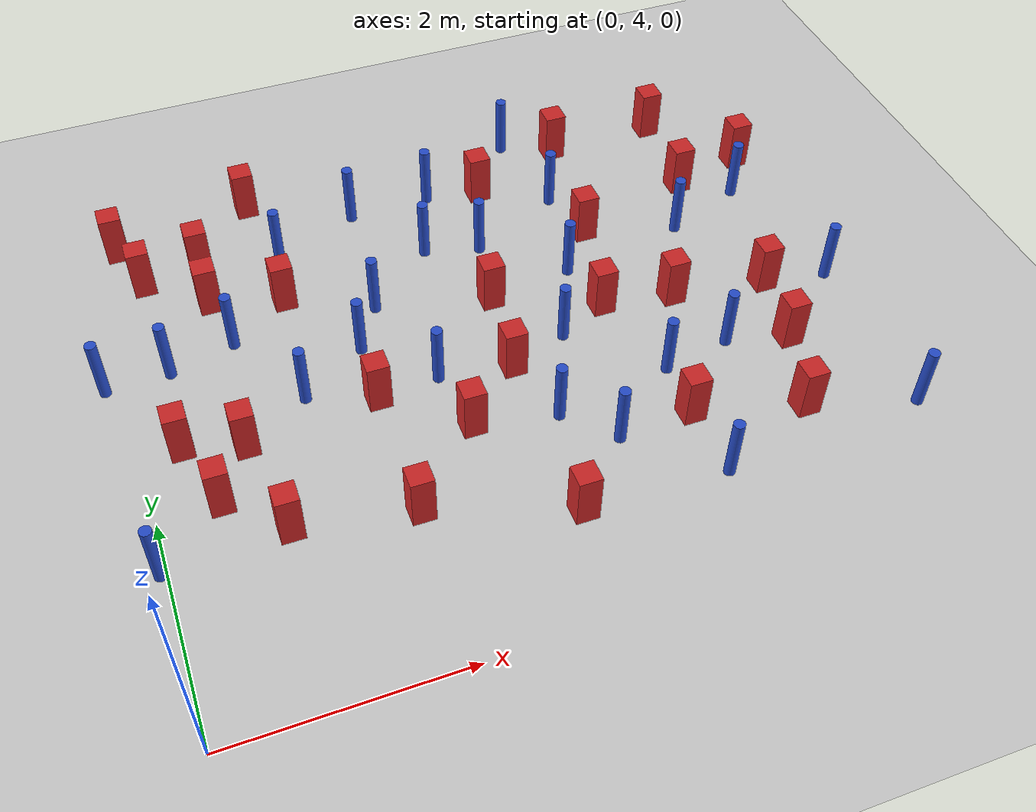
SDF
<sdf version="1.6">
 <world name="default">
  <model name="ground_plane">
   <static>1</static>
   <link name="link">
    <collision name="collision">
     <geometry><plane><normal>0 0 1</normal><size>100 100</size></plane></geometry>
     <surface><friction><ode><mu>100</mu><mu2>50</mu2></ode></friction></surface>
    </collision>
    <visual name="visual">
     <cast_shadows>0</cast_shadows>
     <geometry><plane><normal>0 0 1</normal><size>100 100</size></plane></geometry>
     <material>
      <ambient>1.0 1.0 1.0 1.0</ambient>
      <diffuse>0.8 0.8 0.8 1.0</diffuse>
      <specular>0.01 0.01 0.01 1.000000</specular>
     </material>
    </visual>
   </link>
  </model>
  <model name="pole_obstacle3">
   <static>true</static>
   <pose>3.18833374677 8.98919953602 2.88873142074e-08 -9.90536692318e-09 4.6021994893e-07 -1.20965994988e-07</pose>
   <link name="link">
    <pose>0 0 0.3 0 -0 0</pose>
    <inertial>
     <mass>1</mass>
     <inertia><ixx>0.145833</ixx><ixy>0</ixy><ixz>0</ixz><iyy>0.145833</iyy><iyz>0</iyz><izz>0.125</izz></inertia>
    </inertial>
    <collision name="collision">
     <geometry><cylinder><radius>0.05</radius><length>.6</length></cylinder></geometry>
    </collision>
    <visual name="visual">
     <geometry><cylinder><radius>0.05</radius><length>.6</length></cylinder></geometry>
     <material>
      <script><name>Gazebo/Blue</name><uri>file://media/materials/scripts/gazebo.material</uri></script>
     </material>
    </visual>
   </link>
  </model>
  <model name="pole_obstacle12">
   <static>true</static>
   <pose>4.10713382338 7.55863480886 2.88873142074e-08 -9.90536690842e-09 4.60219948965e-07 -1.20965994976e-07</pose>
   <link name="link">
    <pose>0 0 0.3 0 -0 0</pose>
    <inertial>
     <mass>1</mass>
     <inertia><ixx>0.145833</ixx><ixy>0</ixy><ixz>0</ixz><iyy>0.145833</iyy><iyz>0</iyz><izz>0.125</izz></inertia>
    </inertial>
    <collision name="collision">
     <geometry><cylinder><radius>0.05</radius><length>.6</length></cylinder></geometry>
    </collision>
    <visual name="visual">
     <geometry><cylinder><radius>0.05</radius><length>.6</length></cylinder></geometry>
     <material>
      <script><name>Gazebo/Blue</name><uri>file://media/materials/scripts/gazebo.material</uri></script>
     </material>
    </visual>
   </link>
  </model>
  <model name="pole_obstacle16">
   <static>true</static>
   <pose>1.62075042939 8.62250264331 2.88873142074e-08 -9.90536690474e-09 4.60219948974e-07 -1.2096599497e-07</pose>
   <link name="link">
    <pose>0 0 0.3 0 -0 0</pose>
    <inertial>
     <mass>1</mass>
     <inertia><ixx>0.145833</ixx><ixy>0</ixy><ixz>0</ixz><iyy>0.145833</iyy><iyz>0</iyz><izz>0.125</izz></inertia>
    </inertial>
    <collision name="collision">
     <geometry><cylinder><radius>0.05</radius><length>.6</length></cylinder></geometry>
    </collision>
    <visual name="visual">
     <geometry><cylinder><radius>0.05</radius><length>.6</length></cylinder></geometry>
     <material>
      <script><name>Gazebo/Blue</name><uri>file://media/materials/scripts/gazebo.material</uri></script>
     </material>
    </visual>
   </link>
  </model>
  <model name="square_post_obstacle28">
   <static>true</static>
   <pose>1.98074953255 5.40776902618 8.22691968438e-08 7.2212513382e-06 -7.54495500217e-07 2.29674213826e-05</pose>
   <link name="link">
    <pose>0 0 0.25 0 -0 0</pose>
    <inertial>
     <mass>100</mass>
     <inertia>
      <ixx>0.166667</ixx>
      <ixy>0</ixy>
      <ixz>0</ixz>
      <iyy>0.166667</iyy>
      <iyz>0</iyz>
      <izz>0.166667</izz>
     </inertia>
    </inertial>
    <collision name="collision"><geometry><box><size>.2 .2 .5</size></box></geometry></collision>
    <visual name="visual">
     <geometry><box><size>.2 .2 .5</size></box></geometry>
     <material>
      <script><name>Gazebo/Red</name><uri>file://media/materials/scripts/gazebo.material</uri></script>
     </material>
    </visual>
   </link>
  </model>
  <model name="square_post_obstacle32">
   <static>true</static>
   <pose>0.200489293183 9.22086799647 8.22691968438e-08 7.22125133819e-06 -7.54495500217e-07 2.29674213826e-05</pose>
   <link name="link">
    <pose>0 0 0.25 0 -0 0</pose>
    <inertial>
     <mass>100</mass>
     <inertia>
      <ixx>0.166667</ixx>
      <ixy>0</ixy>
      <ixz>0</ixz>
      <iyy>0.166667</iyy>
      <iyz>0</iyz>
      <izz>0.166667</izz>
     </inertia>
    </inertial>
    <collision name="collision"><geometry><box><size>.2 .2 .5</size></box></geometry></collision>
    <visual name="visual">
     <geometry><box><size>.2 .2 .5</size></box></geometry>
     <material>
      <script><name>Gazebo/Red</name><uri>file://media/materials/scripts/gazebo.material</uri></script>
     </material>
    </visual>
   </link>
  </model>
  <model name="pole_obstacle30">
   <static>true</static>
   <pose>1.41948416515 6.86563301089 2.88873142074e-08 -9.90536689852e-09 4.60219948989e-07 -1.2096599496e-07</pose>
   <link name="link">
    <pose>0 0 0.3 0 -0 0</pose>
    <inertial>
     <mass>1</mass>
     <inertia><ixx>0.145833</ixx><ixy>0</ixy><ixz>0</ixz><iyy>0.145833</iyy><iyz>0</iyz><izz>0.125</izz></inertia>
    </inertial>
    <collision name="collision">
     <geometry><cylinder><radius>0.05</radius><length>.6</length></cylinder></geometry>
    </collision>
    <visual name="visual">
     <geometry><cylinder><radius>0.05</radius><length>.6</length></cylinder></geometry>
     <material>
      <script><name>Gazebo/Blue</name><uri>file://media/materials/scripts/gazebo.material</uri></script>
     </material>
    </visual>
   </link>
  </model>
  <model name="pole_obstacle35">
   <static>true</static>
   <pose>2.5541572846 6.70167796933 2.88873142074e-08 -9.90536689859e-09 4.60219948989e-07 -1.20965994961e-07</pose>
   <link name="link">
    <pose>0 0 0.3 0 -0 0</pose>
    <inertial>
     <mass>1</mass>
     <inertia><ixx>0.145833</ixx><ixy>0</ixy><ixz>0</ixz><iyy>0.145833</iyy><iyz>0</iyz><izz>0.125</izz></inertia>
    </inertial>
    <collision name="collision">
     <geometry><cylinder><radius>0.05</radius><length>.6</length></cylinder></geometry>
    </collision>
    <visual name="visual">
     <geometry><cylinder><radius>0.05</radius><length>.6</length></cylinder></geometry>
     <material>
      <script><name>Gazebo/Blue</name><uri>file://media/materials/scripts/gazebo.material</uri></script>
     </material>
    </visual>
   </link>
  </model>
  <model name="pole_obstacle40">
   <static>true</static>
   <pose>2.93287160424 8.2594189174 2.88873142074e-08 -9.90536692318e-09 4.6021994893e-07 -1.20965994988e-07</pose>
   <link name="link">
    <pose>0 0 0.3 0 -0 0</pose>
    <inertial>
     <mass>1</mass>
     <inertia><ixx>0.145833</ixx><ixy>0</ixy><ixz>0</ixz><iyy>0.145833</iyy><iyz>0</iyz><izz>0.125</izz></inertia>
    </inertial>
    <collision name="collision">
     <geometry><cylinder><radius>0.05</radius><length>.6</length></cylinder></geometry>
    </collision>
    <visual name="visual">
     <geometry><cylinder><radius>0.05</radius><length>.6</length></cylinder></geometry>
     <material>
      <script><name>Gazebo/Blue</name><uri>file://media/materials/scripts/gazebo.material</uri></script>
     </material>
    </visual>
   </link>
  </model>
  <model name="square_post_obstacle40">
   <static>true</static>
   <pose>4.62187758141 9.25742817366 8.22691968438e-08 7.22125133819e-06 -7.54495500217e-07 2.29674213826e-05</pose>
   <link name="link">
    <pose>0 0 0.25 0 -0 0</pose>
    <inertial>
     <mass>100</mass>
     <inertia>
      <ixx>0.166667</ixx>
      <ixy>0</ixy>
      <ixz>0</ixz>
      <iyy>0.166667</iyy>
      <iyz>0</iyz>
      <izz>0.166667</izz>
     </inertia>
    </inertial>
    <collision name="collision"><geometry><box><size>.2 .2 .5</size></box></geometry></collision>
    <visual name="visual">
     <geometry><box><size>.2 .2 .5</size></box></geometry>
     <material>
      <script><name>Gazebo/Red</name><uri>file://media/materials/scripts/gazebo.material</uri></script>
     </material>
    </visual>
   </link>
  </model>
  <model name="square_post_obstacle41">
   <static>true</static>
   <pose>5.60438561698 8.33967003927 8.22691968438e-08 7.22125133819e-06 -7.54495500217e-07 2.29674213826e-05</pose>
   <link name="link">
    <pose>0 0 0.25 0 -0 0</pose>
    <inertial>
     <mass>100</mass>
     <inertia>
      <ixx>0.166667</ixx>
      <ixy>0</ixy>
      <ixz>0</ixz>
      <iyy>0.166667</iyy>
      <iyz>0</iyz>
      <izz>0.166667</izz>
     </inertia>
    </inertial>
    <collision name="collision"><geometry><box><size>.2 .2 .5</size></box></geometry></collision>
    <visual name="visual">
     <geometry><box><size>.2 .2 .5</size></box></geometry>
     <material>
      <script><name>Gazebo/Red</name><uri>file://media/materials/scripts/gazebo.material</uri></script>
     </material>
    </visual>
   </link>
  </model>
  <model name="pole_obstacle45">
   <static>true</static>
   <pose>2.28210519997 7.70139335092 2.88873142074e-08 -9.90536689859e-09 4.60219948989e-07 -1.20965994961e-07</pose>
   <link name="link">
    <pose>0 0 0.3 0 -0 0</pose>
    <inertial>
     <mass>1</mass>
     <inertia><ixx>0.145833</ixx><ixy>0</ixy><ixz>0</ixz><iyy>0.145833</iyy><iyz>0</iyz><izz>0.125</izz></inertia>
    </inertial>
    <collision name="collision">
     <geometry><cylinder><radius>0.05</radius><length>.6</length></cylinder></geometry>
    </collision>
    <visual name="visual">
     <geometry><cylinder><radius>0.05</radius><length>.6</length></cylinder></geometry>
     <material>
      <script><name>Gazebo/Blue</name><uri>file://media/materials/scripts/gazebo.material</uri></script>
     </material>
    </visual>
   </link>
  </model>
  <model name="square_post_obstacle57">
   <static>true</static>
   <pose>5.68397695176 9.26995657292 8.22691968438e-08 7.22125133819e-06 -7.54495500217e-07 2.29674213826e-05</pose>
   <link name="link">
    <pose>0 0 0.25 0 -0 0</pose>
    <inertial>
     <mass>100</mass>
     <inertia>
      <ixx>0.166667</ixx>
      <ixy>0</ixy>
      <ixz>0</ixz>
      <iyy>0.166667</iyy>
      <iyz>0</iyz>
      <izz>0.166667</izz>
     </inertia>
    </inertial>
    <collision name="collision"><geometry><box><size>.2 .2 .5</size></box></geometry></collision>
    <visual name="visual">
     <geometry><box><size>.2 .2 .5</size></box></geometry>
     <material>
      <script><name>Gazebo/Red</name><uri>file://media/materials/scripts/gazebo.material</uri></script>
     </material>
    </visual>
   </link>
  </model>
  <model name="pole_obstacle61">
   <static>true</static>
   <pose>4.31359406005 8.55075258083 2.88873142074e-08 -9.9053668967e-09 4.60219948993e-07 -1.20965994957e-07</pose>
   <link name="link">
    <pose>0 0 0.3 0 -0 0</pose>
    <inertial>
     <mass>1</mass>
     <inertia><ixx>0.145833</ixx><ixy>0</ixy><ixz>0</ixz><iyy>0.145833</iyy><iyz>0</iyz><izz>0.125</izz></inertia>
    </inertial>
    <collision name="collision">
     <geometry><cylinder><radius>0.05</radius><length>.6</length></cylinder></geometry>
    </collision>
    <visual name="visual">
     <geometry><cylinder><radius>0.05</radius><length>.6</length></cylinder></geometry>
     <material>
      <script><name>Gazebo/Blue</name><uri>file://media/materials/scripts/gazebo.material</uri></script>
     </material>
    </visual>
   </link>
  </model>
  <model name="pole_obstacle63">
   <static>true</static>
   <pose>0.982726846828 7.69193110888 2.88873142074e-08 -9.90536689421e-09 4.60219948999e-07 -1.20965994953e-07</pose>
   <link name="link">
    <pose>0 0 0.3 0 -0 0</pose>
    <inertial>
     <mass>1</mass>
     <inertia><ixx>0.145833</ixx><ixy>0</ixy><ixz>0</ixz><iyy>0.145833</iyy><iyz>0</iyz><izz>0.125</izz></inertia>
    </inertial>
    <collision name="collision">
     <geometry><cylinder><radius>0.05</radius><length>.6</length></cylinder></geometry>
    </collision>
    <visual name="visual">
     <geometry><cylinder><radius>0.05</radius><length>.6</length></cylinder></geometry>
     <material>
      <script><name>Gazebo/Blue</name><uri>file://media/materials/scripts/gazebo.material</uri></script>
     </material>
    </visual>
   </link>
  </model>
  <model name="square_post_obstacle67">
   <static>true</static>
   <pose>5.35273780437 5.34342790727 8.22691968438e-08 7.2212513382e-06 -7.54495500217e-07 2.29674213826e-05</pose>
   <link name="link">
    <pose>0 0 0.25 0 -0 0</pose>
    <inertial>
     <mass>100</mass>
     <inertia>
      <ixx>0.166667</ixx>
      <ixy>0</ixy>
      <ixz>0</ixz>
      <iyy>0.166667</iyy>
      <iyz>0</iyz>
      <izz>0.166667</izz>
     </inertia>
    </inertial>
    <collision name="collision"><geometry><box><size>.2 .2 .5</size></box></geometry></collision>
    <visual name="visual">
     <geometry><box><size>.2 .2 .5</size></box></geometry>
     <material>
      <script><name>Gazebo/Red</name><uri>file://media/materials/scripts/gazebo.material</uri></script>
     </material>
    </visual>
   </link>
  </model>
  <model name="pole_obstacle67">
   <static>true</static>
   <pose>6.28983446281 5.07106388918 2.88873142074e-08 -9.90536690842e-09 4.60219948965e-07 -1.20965994976e-07</pose>
   <link name="link">
    <pose>0 0 0.3 0 -0 0</pose>
    <inertial>
     <mass>1</mass>
     <inertia><ixx>0.145833</ixx><ixy>0</ixy><ixz>0</ixz><iyy>0.145833</iyy><iyz>0</iyz><izz>0.125</izz></inertia>
    </inertial>
    <collision name="collision">
     <geometry><cylinder><radius>0.05</radius><length>.6</length></cylinder></geometry>
    </collision>
    <visual name="visual">
     <geometry><cylinder><radius>0.05</radius><length>.6</length></cylinder></geometry>
     <material>
      <script><name>Gazebo/Blue</name><uri>file://media/materials/scripts/gazebo.material</uri></script>
     </material>
    </visual>
   </link>
  </model>
  <model name="pole_obstacle72">
   <static>true</static>
   <pose>5.07611702506 6.24543892946 2.88873142074e-08 -9.90536690842e-09 4.60219948965e-07 -1.20965994976e-07</pose>
   <link name="link">
    <pose>0 0 0.3 0 -0 0</pose>
    <inertial>
     <mass>1</mass>
     <inertia><ixx>0.145833</ixx><ixy>0</ixy><ixz>0</ixz><iyy>0.145833</iyy><iyz>0</iyz><izz>0.125</izz></inertia>
    </inertial>
    <collision name="collision">
     <geometry><cylinder><radius>0.05</radius><length>.6</length></cylinder></geometry>
    </collision>
    <visual name="visual">
     <geometry><cylinder><radius>0.05</radius><length>.6</length></cylinder></geometry>
     <material>
      <script><name>Gazebo/Blue</name><uri>file://media/materials/scripts/gazebo.material</uri></script>
     </material>
    </visual>
   </link>
  </model>
  <model name="pole_obstacle83">
   <static>true</static>
   <pose>6.06031349049 8.05430986558 2.88873142074e-08 -9.9053668967e-09 4.60219948993e-07 -1.20965994957e-07</pose>
   <link name="link">
    <pose>0 0 0.3 0 -0 0</pose>
    <inertial>
     <mass>1</mass>
     <inertia><ixx>0.145833</ixx><ixy>0</ixy><ixz>0</ixz><iyy>0.145833</iyy><iyz>0</iyz><izz>0.125</izz></inertia>
    </inertial>
    <collision name="collision">
     <geometry><cylinder><radius>0.05</radius><length>.6</length></cylinder></geometry>
    </collision>
    <visual name="visual">
     <geometry><cylinder><radius>0.05</radius><length>.6</length></cylinder></geometry>
     <material>
      <script><name>Gazebo/Blue</name><uri>file://media/materials/scripts/gazebo.material</uri></script>
     </material>
    </visual>
   </link>
  </model>
  <model name="pole_obstacle84">
   <static>true</static>
   <pose>5.30505975378 7.75981747945 2.88873142074e-08 -9.90536690842e-09 4.60219948965e-07 -1.20965994976e-07</pose>
   <link name="link">
    <pose>0 0 0.3 0 -0 0</pose>
    <inertial>
     <mass>1</mass>
     <inertia><ixx>0.145833</ixx><ixy>0</ixy><ixz>0</ixz><iyy>0.145833</iyy><iyz>0</iyz><izz>0.125</izz></inertia>
    </inertial>
    <collision name="collision">
     <geometry><cylinder><radius>0.05</radius><length>.6</length></cylinder></geometry>
    </collision>
    <visual name="visual">
     <geometry><cylinder><radius>0.05</radius><length>.6</length></cylinder></geometry>
     <material>
      <script><name>Gazebo/Blue</name><uri>file://media/materials/scripts/gazebo.material</uri></script>
     </material>
    </visual>
   </link>
  </model>
  <model name="square_post_obstacle80">
   <static>true</static>
   <pose>3.18141537491 4.98160254486 8.22691968438e-08 7.2212513382e-06 -7.54495500217e-07 2.29674213826e-05</pose>
   <link name="link">
    <pose>0 0 0.25 0 -0 0</pose>
    <inertial>
     <mass>100</mass>
     <inertia>
      <ixx>0.166667</ixx>
      <ixy>0</ixy>
      <ixz>0</ixz>
      <iyy>0.166667</iyy>
      <iyz>0</iyz>
      <izz>0.166667</izz>
     </inertia>
    </inertial>
    <collision name="collision"><geometry><box><size>.2 .2 .5</size></box></geometry></collision>
    <visual name="visual">
     <geometry><box><size>.2 .2 .5</size></box></geometry>
     <material>
      <script><name>Gazebo/Red</name><uri>file://media/materials/scripts/gazebo.material</uri></script>
     </material>
    </visual>
   </link>
  </model>
  <model name="pole_obstacle89">
   <static>true</static>
   <pose>3.43517315175 8.12578247646 2.88873142074e-08 -9.90536692318e-09 4.6021994893e-07 -1.20965994988e-07</pose>
   <link name="link">
    <pose>0 0 0.3 0 -0 0</pose>
    <inertial>
     <mass>1</mass>
     <inertia><ixx>0.145833</ixx><ixy>0</ixy><ixz>0</ixz><iyy>0.145833</iyy><iyz>0</iyz><izz>0.125</izz></inertia>
    </inertial>
    <collision name="collision">
     <geometry><cylinder><radius>0.05</radius><length>.6</length></cylinder></geometry>
    </collision>
    <visual name="visual">
     <geometry><cylinder><radius>0.05</radius><length>.6</length></cylinder></geometry>
     <material>
      <script><name>Gazebo/Blue</name><uri>file://media/materials/scripts/gazebo.material</uri></script>
     </material>
    </visual>
   </link>
  </model>
  <model name="pole_obstacle92">
   <static>true</static>
   <pose>4.151816735 9.47914435177 2.88873142074e-08 -9.9053668967e-09 4.60219948993e-07 -1.20965994957e-07</pose>
   <link name="link">
    <pose>0 0 0.3 0 -0 0</pose>
    <inertial>
     <mass>1</mass>
     <inertia><ixx>0.145833</ixx><ixy>0</ixy><ixz>0</ixz><iyy>0.145833</iyy><iyz>0</iyz><izz>0.125</izz></inertia>
    </inertial>
    <collision name="collision">
     <geometry><cylinder><radius>0.05</radius><length>.6</length></cylinder></geometry>
    </collision>
    <visual name="visual">
     <geometry><cylinder><radius>0.05</radius><length>.6</length></cylinder></geometry>
     <material>
      <script><name>Gazebo/Blue</name><uri>file://media/materials/scripts/gazebo.material</uri></script>
     </material>
    </visual>
   </link>
  </model>
  <model name="pole_obstacle97">
   <static>true</static>
   <pose>3.75263318554 5.55787002415 2.88873142074e-08 -9.90536689859e-09 4.60219948989e-07 -1.20965994961e-07</pose>
   <link name="link">
    <pose>0 0 0.3 0 -0 0</pose>
    <inertial>
     <mass>1</mass>
     <inertia><ixx>0.145833</ixx><ixy>0</ixy><ixz>0</ixz><iyy>0.145833</iyy><iyz>0</iyz><izz>0.125</izz></inertia>
    </inertial>
    <collision name="collision">
     <geometry><cylinder><radius>0.05</radius><length>.6</length></cylinder></geometry>
    </collision>
    <visual name="visual">
     <geometry><cylinder><radius>0.05</radius><length>.6</length></cylinder></geometry>
     <material>
      <script><name>Gazebo/Blue</name><uri>file://media/materials/scripts/gazebo.material</uri></script>
     </material>
    </visual>
   </link>
  </model>
  <model name="pole_obstacle103">
   <static>true</static>
   <pose>-0.0502740521614 5.5229574236 2.88873142074e-08 -9.90536689643e-09 4.60219948994e-07 -1.20965994959e-07</pose>
   <link name="link">
    <pose>0 0 0.3 0 -0 0</pose>
    <inertial>
     <mass>1</mass>
     <inertia><ixx>0.145833</ixx><ixy>0</ixy><ixz>0</ixz><iyy>0.145833</iyy><iyz>0</iyz><izz>0.125</izz></inertia>
    </inertial>
    <collision name="collision">
     <geometry><cylinder><radius>0.05</radius><length>.6</length></cylinder></geometry>
    </collision>
    <visual name="visual">
     <geometry><cylinder><radius>0.05</radius><length>.6</length></cylinder></geometry>
     <material>
      <script><name>Gazebo/Blue</name><uri>file://media/materials/scripts/gazebo.material</uri></script>
     </material>
    </visual>
   </link>
  </model>
  <model name="square_post_obstacle92">
   <static>true</static>
   <pose>5.73253671352 6.79692875827 8.22691968438e-08 7.2212513382e-06 -7.54495500217e-07 2.29674213826e-05</pose>
   <link name="link">
    <pose>0 0 0.25 0 -0 0</pose>
    <inertial>
     <mass>100</mass>
     <inertia>
      <ixx>0.166667</ixx>
      <ixy>0</ixy>
      <ixz>0</ixz>
      <iyy>0.166667</iyy>
      <iyz>0</iyz>
      <izz>0.166667</izz>
     </inertia>
    </inertial>
    <collision name="collision"><geometry><box><size>.2 .2 .5</size></box></geometry></collision>
    <visual name="visual">
     <geometry><box><size>.2 .2 .5</size></box></geometry>
     <material>
      <script><name>Gazebo/Red</name><uri>file://media/materials/scripts/gazebo.material</uri></script>
     </material>
    </visual>
   </link>
  </model>
  <model name="square_post_obstacle99">
   <static>true</static>
   <pose>0.883906080097 8.25071944463 8.22691968438e-08 7.22125133819e-06 -7.54495500217e-07 2.29674213826e-05</pose>
   <link name="link">
    <pose>0 0 0.25 0 -0 0</pose>
    <inertial>
     <mass>100</mass>
     <inertia>
      <ixx>0.166667</ixx>
      <ixy>0</ixy>
      <ixz>0</ixz>
      <iyy>0.166667</iyy>
      <iyz>0</iyz>
      <izz>0.166667</izz>
     </inertia>
    </inertial>
    <collision name="collision"><geometry><box><size>.2 .2 .5</size></box></geometry></collision>
    <visual name="visual">
     <geometry><box><size>.2 .2 .5</size></box></geometry>
     <material>
      <script><name>Gazebo/Red</name><uri>file://media/materials/scripts/gazebo.material</uri></script>
     </material>
    </visual>
   </link>
  </model>
  <model name="square_post_obstacle100">
   <static>true</static>
   <pose>2.64701587301 6.09043995519 8.22691968438e-08 7.2212513382e-06 -7.54495500217e-07 2.29674213826e-05</pose>
   <link name="link">
    <pose>0 0 0.25 0 -0 0</pose>
    <inertial>
     <mass>100</mass>
     <inertia>
      <ixx>0.166667</ixx>
      <ixy>0</ixy>
      <ixz>0</ixz>
      <iyy>0.166667</iyy>
      <iyz>0</iyz>
      <izz>0.166667</izz>
     </inertia>
    </inertial>
    <collision name="collision"><geometry><box><size>.2 .2 .5</size></box></geometry></collision>
    <visual name="visual">
     <geometry><box><size>.2 .2 .5</size></box></geometry>
     <material>
      <script><name>Gazebo/Red</name><uri>file://media/materials/scripts/gazebo.material</uri></script>
     </material>
    </visual>
   </link>
  </model>
  <model name="square_post_obstacle102">
   <static>true</static>
   <pose>5.61008779283 6.09420344714 8.22691968438e-08 7.2212513382e-06 -7.54495500217e-07 2.29674213826e-05</pose>
   <link name="link">
    <pose>0 0 0.25 0 -0 0</pose>
    <inertial>
     <mass>100</mass>
     <inertia>
      <ixx>0.166667</ixx>
      <ixy>0</ixy>
      <ixz>0</ixz>
      <iyy>0.166667</iyy>
      <iyz>0</iyz>
      <izz>0.166667</izz>
     </inertia>
    </inertial>
    <collision name="collision"><geometry><box><size>.2 .2 .5</size></box></geometry></collision>
    <visual name="visual">
     <geometry><box><size>.2 .2 .5</size></box></geometry>
     <material>
      <script><name>Gazebo/Red</name><uri>file://media/materials/scripts/gazebo.material</uri></script>
     </material>
    </visual>
   </link>
  </model>
  <model name="square_post_obstacle103">
   <static>true</static>
   <pose>4.2134281895 7.02430591854 8.22691968438e-08 7.2212513382e-06 -7.54495500217e-07 2.29674213826e-05</pose>
   <link name="link">
    <pose>0 0 0.25 0 -0 0</pose>
    <inertial>
     <mass>100</mass>
     <inertia>
      <ixx>0.166667</ixx>
      <ixy>0</ixy>
      <ixz>0</ixz>
      <iyy>0.166667</iyy>
      <iyz>0</iyz>
      <izz>0.166667</izz>
     </inertia>
    </inertial>
    <collision name="collision"><geometry><box><size>.2 .2 .5</size></box></geometry></collision>
    <visual name="visual">
     <geometry><box><size>.2 .2 .5</size></box></geometry>
     <material>
      <script><name>Gazebo/Red</name><uri>file://media/materials/scripts/gazebo.material</uri></script>
     </material>
    </visual>
   </link>
  </model>
  <model name="pole_obstacle119">
   <static>true</static>
   <pose>6.33380896151 6.70306202903 2.88873142074e-08 -9.90536690842e-09 4.60219948965e-07 -1.20965994976e-07</pose>
   <link name="link">
    <pose>0 0 0.3 0 -0 0</pose>
    <inertial>
     <mass>1</mass>
     <inertia><ixx>0.145833</ixx><ixy>0</ixy><ixz>0</ixz><iyy>0.145833</iyy><iyz>0</iyz><izz>0.125</izz></inertia>
    </inertial>
    <collision name="collision">
     <geometry><cylinder><radius>0.05</radius><length>.6</length></cylinder></geometry>
    </collision>
    <visual name="visual">
     <geometry><cylinder><radius>0.05</radius><length>.6</length></cylinder></geometry>
     <material>
      <script><name>Gazebo/Blue</name><uri>file://media/materials/scripts/gazebo.material</uri></script>
     </material>
    </visual>
   </link>
  </model>
  <model name="pole_obstacle123">
   <static>true</static>
   <pose>4.44558072932 4.9440906358 2.88873142074e-08 -9.90536690842e-09 4.60219948965e-07 -1.20965994976e-07</pose>
   <link name="link">
    <pose>0 0 0.3 0 -0 0</pose>
    <inertial>
     <mass>1</mass>
     <inertia><ixx>0.145833</ixx><ixy>0</ixy><ixz>0</ixz><iyy>0.145833</iyy><iyz>0</iyz><izz>0.125</izz></inertia>
    </inertial>
    <collision name="collision">
     <geometry><cylinder><radius>0.05</radius><length>.6</length></cylinder></geometry>
    </collision>
    <visual name="visual">
     <geometry><cylinder><radius>0.05</radius><length>.6</length></cylinder></geometry>
     <material>
      <script><name>Gazebo/Blue</name><uri>file://media/materials/scripts/gazebo.material</uri></script>
     </material>
    </visual>
   </link>
  </model>
  <model name="pole_obstacle137">
   <static>true</static>
   <pose>3.37426116808 5.95666846598 2.88873142074e-08 -9.90536689859e-09 4.60219948989e-07 -1.20965994961e-07</pose>
   <link name="link">
    <pose>0 0 0.3 0 -0 0</pose>
    <inertial>
     <mass>1</mass>
     <inertia><ixx>0.145833</ixx><ixy>0</ixy><ixz>0</ixz><iyy>0.145833</iyy><iyz>0</iyz><izz>0.125</izz></inertia>
    </inertial>
    <collision name="collision">
     <geometry><cylinder><radius>0.05</radius><length>.6</length></cylinder></geometry>
    </collision>
    <visual name="visual">
     <geometry><cylinder><radius>0.05</radius><length>.6</length></cylinder></geometry>
     <material>
      <script><name>Gazebo/Blue</name><uri>file://media/materials/scripts/gazebo.material</uri></script>
     </material>
    </visual>
   </link>
  </model>
  <model name="pole_obstacle138">
   <static>true</static>
   <pose>4.44661268691 6.12448433167 2.88873142074e-08 -9.90536690842e-09 4.60219948965e-07 -1.20965994976e-07</pose>
   <link name="link">
    <pose>0 0 0.3 0 -0 0</pose>
    <inertial>
     <mass>1</mass>
     <inertia><ixx>0.145833</ixx><ixy>0</ixy><ixz>0</ixz><iyy>0.145833</iyy><iyz>0</iyz><izz>0.125</izz></inertia>
    </inertial>
    <collision name="collision">
     <geometry><cylinder><radius>0.05</radius><length>.6</length></cylinder></geometry>
    </collision>
    <visual name="visual">
     <geometry><cylinder><radius>0.05</radius><length>.6</length></cylinder></geometry>
     <material>
      <script><name>Gazebo/Blue</name><uri>file://media/materials/scripts/gazebo.material</uri></script>
     </material>
    </visual>
   </link>
  </model>
  <model name="square_post_obstacle125">
   <static>true</static>
   <pose>1.52919991553 8.05893087399 8.22691968438e-08 7.22125133819e-06 -7.54495500217e-07 2.29674213826e-05</pose>
   <link name="link">
    <pose>0 0 0.25 0 -0 0</pose>
    <inertial>
     <mass>100</mass>
     <inertia>
      <ixx>0.166667</ixx>
      <ixy>0</ixy>
      <ixz>0</ixz>
      <iyy>0.166667</iyy>
      <iyz>0</iyz>
      <izz>0.166667</izz>
     </inertia>
    </inertial>
    <collision name="collision"><geometry><box><size>.2 .2 .5</size></box></geometry></collision>
    <visual name="visual">
     <geometry><box><size>.2 .2 .5</size></box></geometry>
     <material>
      <script><name>Gazebo/Red</name><uri>file://media/materials/scripts/gazebo.material</uri></script>
     </material>
    </visual>
   </link>
  </model>
  <model name="square_post_obstacle126">
   <static>true</static>
   <pose>4.86591384202 6.92069058646 8.22691968438e-08 7.2212513382e-06 -7.54495500217e-07 2.29674213826e-05</pose>
   <link name="link">
    <pose>0 0 0.25 0 -0 0</pose>
    <inertial>
     <mass>100</mass>
     <inertia>
      <ixx>0.166667</ixx>
      <ixy>0</ixy>
      <ixz>0</ixz>
      <iyy>0.166667</iyy>
      <iyz>0</iyz>
      <izz>0.166667</izz>
     </inertia>
    </inertial>
    <collision name="collision"><geometry><box><size>.2 .2 .5</size></box></geometry></collision>
    <visual name="visual">
     <geometry><box><size>.2 .2 .5</size></box></geometry>
     <material>
      <script><name>Gazebo/Red</name><uri>file://media/materials/scripts/gazebo.material</uri></script>
     </material>
    </visual>
   </link>
  </model>
  <model name="square_post_obstacle134">
   <static>true</static>
   <pose>0.976685363937 5.58408302881 8.22691968438e-08 7.2212513382e-06 -7.54495500217e-07 2.29674213826e-05</pose>
   <link name="link">
    <pose>0 0 0.25 0 -0 0</pose>
    <inertial>
     <mass>100</mass>
     <inertia>
      <ixx>0.166667</ixx>
      <ixy>0</ixy>
      <ixz>0</ixz>
      <iyy>0.166667</iyy>
      <iyz>0</iyz>
      <izz>0.166667</izz>
     </inertia>
    </inertial>
    <collision name="collision"><geometry><box><size>.2 .2 .5</size></box></geometry></collision>
    <visual name="visual">
     <geometry><box><size>.2 .2 .5</size></box></geometry>
     <material>
      <script><name>Gazebo/Red</name><uri>file://media/materials/scripts/gazebo.material</uri></script>
     </material>
    </visual>
   </link>
  </model>
  <model name="square_post_obstacle140">
   <static>true</static>
   <pose>1.47918916833 9.4309370956 8.22691968438e-08 7.22125133819e-06 -7.54495500217e-07 2.29674213826e-05</pose>
   <link name="link">
    <pose>0 0 0.25 0 -0 0</pose>
    <inertial>
     <mass>100</mass>
     <inertia>
      <ixx>0.166667</ixx>
      <ixy>0</ixy>
      <ixz>0</ixz>
      <iyy>0.166667</iyy>
      <iyz>0</iyz>
      <izz>0.166667</izz>
     </inertia>
    </inertial>
    <collision name="collision"><geometry><box><size>.2 .2 .5</size></box></geometry></collision>
    <visual name="visual">
     <geometry><box><size>.2 .2 .5</size></box></geometry>
     <material>
      <script><name>Gazebo/Red</name><uri>file://media/materials/scripts/gazebo.material</uri></script>
     </material>
    </visual>
   </link>
  </model>
  <model name="square_post_obstacle142">
   <static>true</static>
   <pose>3.30125589591 7.43530192938 8.22691968438e-08 7.2212513382e-06 -7.54495500217e-07 2.29674213826e-05</pose>
   <link name="link">
    <pose>0 0 0.25 0 -0 0</pose>
    <inertial>
     <mass>100</mass>
     <inertia>
      <ixx>0.166667</ixx>
      <ixy>0</ixy>
      <ixz>0</ixz>
      <iyy>0.166667</iyy>
      <iyz>0</iyz>
      <izz>0.166667</izz>
     </inertia>
    </inertial>
    <collision name="collision"><geometry><box><size>.2 .2 .5</size></box></geometry></collision>
    <visual name="visual">
     <geometry><box><size>.2 .2 .5</size></box></geometry>
     <material>
      <script><name>Gazebo/Red</name><uri>file://media/materials/scripts/gazebo.material</uri></script>
     </material>
    </visual>
   </link>
  </model>
  <model name="square_post_obstacle145">
   <static>true</static>
   <pose>3.19712426911 6.59627490714 8.22691968438e-08 7.2212513382e-06 -7.54495500217e-07 2.29674213826e-05</pose>
   <link name="link">
    <pose>0 0 0.25 0 -0 0</pose>
    <inertial>
     <mass>100</mass>
     <inertia>
      <ixx>0.166667</ixx>
      <ixy>0</ixy>
      <ixz>0</ixz>
      <iyy>0.166667</iyy>
      <iyz>0</iyz>
      <izz>0.166667</izz>
     </inertia>
    </inertial>
    <collision name="collision"><geometry><box><size>.2 .2 .5</size></box></geometry></collision>
    <visual name="visual">
     <geometry><box><size>.2 .2 .5</size></box></geometry>
     <material>
      <script><name>Gazebo/Red</name><uri>file://media/materials/scripts/gazebo.material</uri></script>
     </material>
    </visual>
   </link>
  </model>
  <model name="square_post_obstacle156">
   <static>true</static>
   <pose>0.523025521734 6.01261125739 8.22691968438e-08 7.2212513382e-06 -7.54495500217e-07 2.29674213826e-05</pose>
   <link name="link">
    <pose>0 0 0.25 0 -0 0</pose>
    <inertial>
     <mass>100</mass>
     <inertia>
      <ixx>0.166667</ixx>
      <ixy>0</ixy>
      <ixz>0</ixz>
      <iyy>0.166667</iyy>
      <iyz>0</iyz>
      <izz>0.166667</izz>
     </inertia>
    </inertial>
    <collision name="collision"><geometry><box><size>.2 .2 .5</size></box></geometry></collision>
    <visual name="visual">
     <geometry><box><size>.2 .2 .5</size></box></geometry>
     <material>
      <script><name>Gazebo/Red</name><uri>file://media/materials/scripts/gazebo.material</uri></script>
     </material>
    </visual>
   </link>
  </model>
  <model name="square_post_obstacle160">
   <static>true</static>
   <pose>1.99685762045 6.6374776776 8.22691968438e-08 7.2212513382e-06 -7.54495500217e-07 2.29674213826e-05</pose>
   <link name="link">
    <pose>0 0 0.25 0 -0 0</pose>
    <inertial>
     <mass>100</mass>
     <inertia>
      <ixx>0.166667</ixx>
      <ixy>0</ixy>
      <ixz>0</ixz>
      <iyy>0.166667</iyy>
      <iyz>0</iyz>
      <izz>0.166667</izz>
     </inertia>
    </inertial>
    <collision name="collision"><geometry><box><size>.2 .2 .5</size></box></geometry></collision>
    <visual name="visual">
     <geometry><box><size>.2 .2 .5</size></box></geometry>
     <material>
      <script><name>Gazebo/Red</name><uri>file://media/materials/scripts/gazebo.material</uri></script>
     </material>
    </visual>
   </link>
  </model>
  <model name="pole_obstacle168">
   <static>true</static>
   <pose>2.4167949715 8.97351449194 2.88873142074e-08 -9.90536692318e-09 4.6021994893e-07 -1.20965994988e-07</pose>
   <link name="link">
    <pose>0 0 0.3 0 -0 0</pose>
    <inertial>
     <mass>1</mass>
     <inertia><ixx>0.145833</ixx><ixy>0</ixy><ixz>0</ixz><iyy>0.145833</iyy><iyz>0</iyz><izz>0.125</izz></inertia>
    </inertial>
    <collision name="collision">
     <geometry><cylinder><radius>0.05</radius><length>.6</length></cylinder></geometry>
    </collision>
    <visual name="visual">
     <geometry><cylinder><radius>0.05</radius><length>.6</length></cylinder></geometry>
     <material>
      <script><name>Gazebo/Blue</name><uri>file://media/materials/scripts/gazebo.material</uri></script>
     </material>
    </visual>
   </link>
  </model>
  <model name="square_post_obstacle161">
   <static>true</static>
   <pose>3.68533307477 8.88793754705 8.22691968438e-08 7.22125133819e-06 -7.54495500217e-07 2.29674213826e-05</pose>
   <link name="link">
    <pose>0 0 0.25 0 -0 0</pose>
    <inertial>
     <mass>100</mass>
     <inertia>
      <ixx>0.166667</ixx>
      <ixy>0</ixy>
      <ixz>0</ixz>
      <iyy>0.166667</iyy>
      <iyz>0</iyz>
      <izz>0.166667</izz>
     </inertia>
    </inertial>
    <collision name="collision"><geometry><box><size>.2 .2 .5</size></box></geometry></collision>
    <visual name="visual">
     <geometry><box><size>.2 .2 .5</size></box></geometry>
     <material>
      <script><name>Gazebo/Red</name><uri>file://media/materials/scripts/gazebo.material</uri></script>
     </material>
    </visual>
   </link>
  </model>
  <model name="pole_obstacle173">
   <static>true</static>
   <pose>3.7512759402 6.80124597432 2.88873142074e-08 -9.90536689859e-09 4.60219948989e-07 -1.20965994961e-07</pose>
   <link name="link">
    <pose>0 0 0.3 0 -0 0</pose>
    <inertial>
     <mass>1</mass>
     <inertia><ixx>0.145833</ixx><ixy>0</ixy><ixz>0</ixz><iyy>0.145833</iyy><iyz>0</iyz><izz>0.125</izz></inertia>
    </inertial>
    <collision name="collision">
     <geometry><cylinder><radius>0.05</radius><length>.6</length></cylinder></geometry>
    </collision>
    <visual name="visual">
     <geometry><cylinder><radius>0.05</radius><length>.6</length></cylinder></geometry>
     <material>
      <script><name>Gazebo/Blue</name><uri>file://media/materials/scripts/gazebo.material</uri></script>
     </material>
    </visual>
   </link>
  </model>
  <model name="pole_obstacle174">
   <static>true</static>
   <pose>0.393975549113 7.53398959346 2.88873142074e-08 -9.90536689683e-09 4.60219948993e-07 -1.20965994957e-07</pose>
   <link name="link">
    <pose>0 0 0.3 0 -0 0</pose>
    <inertial>
     <mass>1</mass>
     <inertia><ixx>0.145833</ixx><ixy>0</ixy><ixz>0</ixz><iyy>0.145833</iyy><iyz>0</iyz><izz>0.125</izz></inertia>
    </inertial>
    <collision name="collision">
     <geometry><cylinder><radius>0.05</radius><length>.6</length></cylinder></geometry>
    </collision>
    <visual name="visual">
     <geometry><cylinder><radius>0.05</radius><length>.6</length></cylinder></geometry>
     <material>
      <script><name>Gazebo/Blue</name><uri>file://media/materials/scripts/gazebo.material</uri></script>
     </material>
    </visual>
   </link>
  </model>
  <model name="square_post_obstacle165">
   <static>true</static>
   <pose>0.835452258518 6.50834958434 8.22691968438e-08 7.2212513382e-06 -7.54495500217e-07 2.29674213826e-05</pose>
   <link name="link">
    <pose>0 0 0.25 0 -0 0</pose>
    <inertial>
     <mass>100</mass>
     <inertia>
      <ixx>0.166667</ixx>
      <ixy>0</ixy>
      <ixz>0</ixz>
      <iyy>0.166667</iyy>
      <iyz>0</iyz>
      <izz>0.166667</izz>
     </inertia>
    </inertial>
    <collision name="collision"><geometry><box><size>.2 .2 .5</size></box></geometry></collision>
    <visual name="visual">
     <geometry><box><size>.2 .2 .5</size></box></geometry>
     <material>
      <script><name>Gazebo/Red</name><uri>file://media/materials/scripts/gazebo.material</uri></script>
     </material>
    </visual>
   </link>
  </model>
  <model name="pole_obstacle179">
   <static>true</static>
   <pose>-0.168939623558 7.51452881227 2.88873142074e-08 -9.90536689816e-09 4.6021994899e-07 -1.20965994961e-07</pose>
   <link name="link">
    <pose>0 0 0.3 0 -0 0</pose>
    <inertial>
     <mass>1</mass>
     <inertia><ixx>0.145833</ixx><ixy>0</ixy><ixz>0</ixz><iyy>0.145833</iyy><iyz>0</iyz><izz>0.125</izz></inertia>
    </inertial>
    <collision name="collision">
     <geometry><cylinder><radius>0.05</radius><length>.6</length></cylinder></geometry>
    </collision>
    <visual name="visual">
     <geometry><cylinder><radius>0.05</radius><length>.6</length></cylinder></geometry>
     <material>
      <script><name>Gazebo/Blue</name><uri>file://media/materials/scripts/gazebo.material</uri></script>
     </material>
    </visual>
   </link>
  </model>
  <model name="square_post_obstacle175">
   <static>true</static>
   <pose>0.90353317461 8.77282941258 8.22691968438e-08 7.22125133819e-06 -7.54495500217e-07 2.29674213826e-05</pose>
   <link name="link">
    <pose>0 0 0.25 0 -0 0</pose>
    <inertial>
     <mass>100</mass>
     <inertia>
      <ixx>0.166667</ixx>
      <ixy>0</ixy>
      <ixz>0</ixz>
      <iyy>0.166667</iyy>
      <iyz>0</iyz>
      <izz>0.166667</izz>
     </inertia>
    </inertial>
    <collision name="collision"><geometry><box><size>.2 .2 .5</size></box></geometry></collision>
    <visual name="visual">
     <geometry><box><size>.2 .2 .5</size></box></geometry>
     <material>
      <script><name>Gazebo/Red</name><uri>file://media/materials/scripts/gazebo.material</uri></script>
     </material>
    </visual>
   </link>
  </model>
  <model name="square_post_obstacle185">
   <static>true</static>
   <pose>6.3106552963 8.50361593099 8.22691968438e-08 7.22125133819e-06 -7.54495500217e-07 2.29674213826e-05</pose>
   <link name="link">
    <pose>0 0 0.25 0 -0 0</pose>
    <inertial>
     <mass>100</mass>
     <inertia>
      <ixx>0.166667</ixx>
      <ixy>0</ixy>
      <ixz>0</ixz>
      <iyy>0.166667</iyy>
      <iyz>0</iyz>
      <izz>0.166667</izz>
     </inertia>
    </inertial>
    <collision name="collision"><geometry><box><size>.2 .2 .5</size></box></geometry></collision>
    <visual name="visual">
     <geometry><box><size>.2 .2 .5</size></box></geometry>
     <material>
      <script><name>Gazebo/Red</name><uri>file://media/materials/scripts/gazebo.material</uri></script>
     </material>
    </visual>
   </link>
  </model>
  <model name="square_post_obstacle186">
   <static>true</static>
   <pose>4.44538471419 7.9997260766 8.22691968438e-08 7.22125133819e-06 -7.54495500217e-07 2.29674213826e-05</pose>
   <link name="link">
    <pose>0 0 0.25 0 -0 0</pose>
    <inertial>
     <mass>100</mass>
     <inertia>
      <ixx>0.166667</ixx>
      <ixy>0</ixy>
      <ixz>0</ixz>
      <iyy>0.166667</iyy>
      <iyz>0</iyz>
      <izz>0.166667</izz>
     </inertia>
    </inertial>
    <collision name="collision"><geometry><box><size>.2 .2 .5</size></box></geometry></collision>
    <visual name="visual">
     <geometry><box><size>.2 .2 .5</size></box></geometry>
     <material>
      <script><name>Gazebo/Red</name><uri>file://media/materials/scripts/gazebo.material</uri></script>
     </material>
    </visual>
   </link>
  </model>
  <model name="square_post_obstacle193">
   <static>true</static>
   <pose>0.328594338049 6.66275994735 8.22691968438e-08 7.22125133819e-06 -7.54495500217e-07 2.29674213826e-05</pose>
   <link name="link">
    <pose>0 0 0.25 0 -0 0</pose>
    <inertial>
     <mass>100</mass>
     <inertia>
      <ixx>0.166667</ixx>
      <ixy>0</ixy>
      <ixz>0</ixz>
      <iyy>0.166667</iyy>
      <iyz>0</iyz>
      <izz>0.166667</izz>
     </inertia>
    </inertial>
    <collision name="collision"><geometry><box><size>.2 .2 .5</size></box></geometry></collision>
    <visual name="visual">
     <geometry><box><size>.2 .2 .5</size></box></geometry>
     <material>
      <script><name>Gazebo/Red</name><uri>file://media/materials/scripts/gazebo.material</uri></script>
     </material>
    </visual>
   </link>
  </model>
  <model name="square_post_obstacle198">
   <static>true</static>
   <pose>0.363538356819 8.67733739488 8.22691968438e-08 7.22125133819e-06 -7.54495500217e-07 2.29674213826e-05</pose>
   <link name="link">
    <pose>0 0 0.25 0 -0 0</pose>
    <inertial>
     <mass>100</mass>
     <inertia>
      <ixx>0.166667</ixx>
      <ixy>0</ixy>
      <ixz>0</ixz>
      <iyy>0.166667</iyy>
      <iyz>0</iyz>
      <izz>0.166667</izz>
     </inertia>
    </inertial>
    <collision name="collision"><geometry><box><size>.2 .2 .5</size></box></geometry></collision>
    <visual name="visual">
     <geometry><box><size>.2 .2 .5</size></box></geometry>
     <material>
      <script><name>Gazebo/Red</name><uri>file://media/materials/scripts/gazebo.material</uri></script>
     </material>
    </visual>
   </link>
  </model>
  <model name="square_post_obstacle204">
   <static>true</static>
   <pose>4.41593560643 5.59770529961 8.22691968438e-08 7.2212513382e-06 -7.54495500217e-07 2.29674213826e-05</pose>
   <link name="link">
    <pose>0 0 0.25 0 -0 0</pose>
    <inertial>
     <mass>100</mass>
     <inertia>
      <ixx>0.166667</ixx>
      <ixy>0</ixy>
      <ixz>0</ixz>
      <iyy>0.166667</iyy>
      <iyz>0</iyz>
      <izz>0.166667</izz>
     </inertia>
    </inertial>
    <collision name="collision"><geometry><box><size>.2 .2 .5</size></box></geometry></collision>
    <visual name="visual">
     <geometry><box><size>.2 .2 .5</size></box></geometry>
     <material>
      <script><name>Gazebo/Red</name><uri>file://media/materials/scripts/gazebo.material</uri></script>
     </material>
    </visual>
   </link>
  </model>
  <model name="pole_obstacle205">
   <static>true</static>
   <pose>2.02166338345 7.25142353935 2.88873142074e-08 -9.90536689932e-09 4.60219948987e-07 -1.20965994962e-07</pose>
   <link name="link">
    <pose>0 0 0.3 0 -0 0</pose>
    <inertial>
     <mass>1</mass>
     <inertia><ixx>0.145833</ixx><ixy>0</ixy><ixz>0</ixz><iyy>0.145833</iyy><iyz>0</iyz><izz>0.125</izz></inertia>
    </inertial>
    <collision name="collision">
     <geometry><cylinder><radius>0.05</radius><length>.6</length></cylinder></geometry>
    </collision>
    <visual name="visual">
     <geometry><cylinder><radius>0.05</radius><length>.6</length></cylinder></geometry>
     <material>
      <script><name>Gazebo/Blue</name><uri>file://media/materials/scripts/gazebo.material</uri></script>
     </material>
    </visual>
   </link>
  </model>
 </world>
</sdf>
